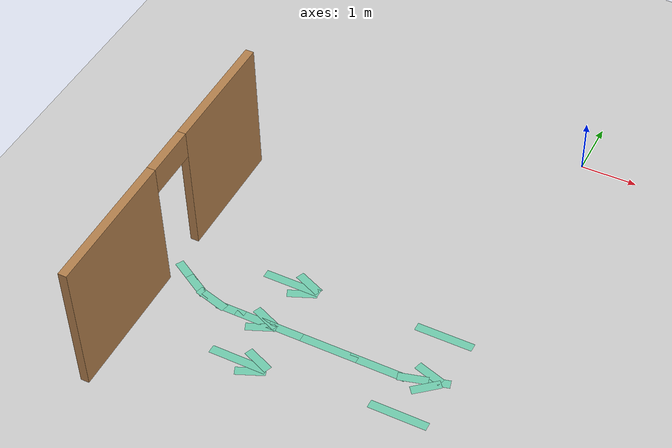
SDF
<sdf version="1.6">
 <world name="default">
  <model name="ground_plane">
   <static>1</static>
   <link name="link">
    <collision name="collision">
     <geometry><plane><normal>0 0 1</normal><size>100 100</size></plane></geometry>
     <surface><friction><ode><mu>100</mu><mu2>50</mu2></ode></friction></surface>
    </collision>
    <visual name="visual">
     <cast_shadows>0</cast_shadows>
     <geometry><plane><normal>0 0 1</normal><size>100 100</size></plane></geometry>
     <material>
      <script><uri>file://media/materials/scripts/gazebo.material</uri><name>Gazebo/Grey</name></script>
     </material>
    </visual>
   </link>
  </model>
  <model name="Untitled">
   <pose>-5.19546 -5.10399 0 0 -0 0</pose>
   <link name="Wall_3">
    <pose>0 -0 0 0 -0 -1.5708</pose>
    <visual name="Wall_3_Visual_0">
     <pose>-1.66418 0 1.25 0 -0 0</pose>
     <geometry><box><size>2.17164 0.15 2.5</size></box></geometry>
     <material>
      <script><uri>file://media/materials/scripts/gazebo.material</uri><name>Gazebo/Wood</name></script>
      <ambient>1 1 1 1</ambient>
     </material>
     <meta><layer>0</layer></meta>
    </visual>
    <collision name="Wall_3_Collision_0">
     <geometry><box><size>2.17164 0.15 2.5</size></box></geometry>
     <pose>-1.66418 0 1.25 0 -0 0</pose>
    </collision>
    <visual name="Wall_3_Visual_1">
     <pose>1.53582 0 1.25 0 -0 0</pose>
     <geometry><box><size>2.42836 0.15 2.5</size></box></geometry>
     <material>
      <script><uri>file://media/materials/scripts/gazebo.material</uri><name>Gazebo/Wood</name></script>
      <ambient>1 1 1 1</ambient>
     </material>
     <meta><layer>0</layer></meta>
    </visual>
    <collision name="Wall_3_Collision_1">
     <geometry><box><size>2.42836 0.15 2.5</size></box></geometry>
     <pose>1.53582 0 1.25 0 -0 0</pose>
    </collision>
    <visual name="Wall_3_Visual_2">
     <pose>-0.128356 0 2.25 0 -0 0</pose>
     <geometry><box><size>0.9 0.15 0.5</size></box></geometry>
     <material>
      <script><uri>file://media/materials/scripts/gazebo.material</uri><name>Gazebo/Wood</name></script>
      <ambient>1 1 1 1</ambient>
     </material>
     <meta><layer>0</layer></meta>
    </visual>
    <collision name="Wall_3_Collision_2">
     <geometry><box><size>0.9 0.15 0.5</size></box></geometry>
     <pose>-0.128356 0 2.25 0 -0 0</pose>
    </collision>
   </link>
   <static>1</static>
  </model>
  <model name="path_test">
   <link name="Wall_27">
    <pose>-2.1139 -0.414832 0 0 0 -0.523599</pose>
    <visual name="Wall_27_Visual">
     <geometry><box><size>0.5 0.15 0</size></box></geometry>
     <material>
      <script><uri>file://media/materials/scripts/gazebo.material</uri><name>Gazebo/Grey</name></script>
      <ambient>0.435294 0.796078 0.67451 1</ambient>
      <shader type="pixel"/>
     </material>
     <meta><layer>0</layer></meta>
    </visual>
    <collision name="Wall_27_Collision">
     <geometry><box><size>0.5 0.15 0</size></box></geometry>
     <surface>
      <friction>
       <ode><mu>1</mu><mu2>1</mu2><fdir1>0 0 0</fdir1><slip1>0</slip1><slip2>0</slip2></ode>
       <torsional>
        <coefficient>1</coefficient>
        <patch_radius>0</patch_radius>
        <surface_radius>0</surface_radius>
        <use_patch_radius>1</use_patch_radius>
        <ode><slip>0</slip></ode>
       </torsional>
      </friction>
      <bounce><restitution_coefficient>0</restitution_coefficient><threshold>1e+06</threshold></bounce>
      <contact>
       <collide_without_contact>0</collide_without_contact>
       <collide_without_contact_bitmask>1</collide_without_contact_bitmask>
       <collide_bitmask>1</collide_bitmask>
       <ode>
        <soft_cfm>0</soft_cfm>
        <soft_erp>0.2</soft_erp>
        <kp>1e+13</kp>
        <kd>1</kd>
        <max_vel>0.01</max_vel>
        <min_depth>0</min_depth>
       </ode>
       <bullet>
        <split_impulse>1</split_impulse>
        <split_impulse_penetration_threshold>-0.01</split_impulse_penetration_threshold>
        <soft_cfm>0</soft_cfm>
        <soft_erp>0.2</soft_erp>
        <kp>1e+13</kp>
        <kd>1</kd>
       </bullet>
      </contact>
     </surface>
    </collision>
   </link>
   <link name="Wall_28">
    <pose>-1.81079 -0.589831 0 0 0 -0.523599</pose>
    <visual name="Wall_28_Visual">
     <geometry><box><size>0.5 0.15 0</size></box></geometry>
     <material>
      <script><uri>file://media/materials/scripts/gazebo.material</uri><name>Gazebo/Grey</name></script>
      <ambient>0.435294 0.796078 0.67451 1</ambient>
      <shader type="pixel"/>
     </material>
     <meta><layer>0</layer></meta>
    </visual>
    <collision name="Wall_28_Collision">
     <geometry><box><size>0.5 0.15 0</size></box></geometry>
     <surface>
      <friction>
       <ode><mu>1</mu><mu2>1</mu2><fdir1>0 0 0</fdir1><slip1>0</slip1><slip2>0</slip2></ode>
       <torsional>
        <coefficient>1</coefficient>
        <patch_radius>0</patch_radius>
        <surface_radius>0</surface_radius>
        <use_patch_radius>1</use_patch_radius>
        <ode><slip>0</slip></ode>
       </torsional>
      </friction>
      <bounce><restitution_coefficient>0</restitution_coefficient><threshold>1e+06</threshold></bounce>
      <contact>
       <collide_without_contact>0</collide_without_contact>
       <collide_without_contact_bitmask>1</collide_without_contact_bitmask>
       <collide_bitmask>1</collide_bitmask>
       <ode>
        <soft_cfm>0</soft_cfm>
        <soft_erp>0.2</soft_erp>
        <kp>1e+13</kp>
        <kd>1</kd>
        <max_vel>0.01</max_vel>
        <min_depth>0</min_depth>
       </ode>
       <bullet>
        <split_impulse>1</split_impulse>
        <split_impulse_penetration_threshold>-0.01</split_impulse_penetration_threshold>
        <soft_cfm>0</soft_cfm>
        <soft_erp>0.2</soft_erp>
        <kp>1e+13</kp>
        <kd>1</kd>
       </bullet>
      </contact>
     </surface>
    </collision>
   </link>
   <link name="Wall_29">
    <pose>-1.61094 -0.690272 0 0 0 -0.261799</pose>
    <visual name="Wall_29_Visual">
     <geometry><box><size>0.25 0.15 0</size></box></geometry>
     <material>
      <script><uri>file://media/materials/scripts/gazebo.material</uri><name>Gazebo/Grey</name></script>
      <ambient>0.435294 0.796078 0.67451 1</ambient>
      <shader type="pixel"/>
     </material>
     <meta><layer>0</layer></meta>
    </visual>
    <collision name="Wall_29_Collision">
     <geometry><box><size>0.25 0.15 0</size></box></geometry>
     <surface>
      <friction>
       <ode><mu>1</mu><mu2>1</mu2><fdir1>0 0 0</fdir1><slip1>0</slip1><slip2>0</slip2></ode>
       <torsional>
        <coefficient>1</coefficient>
        <patch_radius>0</patch_radius>
        <surface_radius>0</surface_radius>
        <use_patch_radius>1</use_patch_radius>
        <ode><slip>0</slip></ode>
       </torsional>
      </friction>
      <bounce><restitution_coefficient>0</restitution_coefficient><threshold>1e+06</threshold></bounce>
      <contact>
       <collide_without_contact>0</collide_without_contact>
       <collide_without_contact_bitmask>1</collide_without_contact_bitmask>
       <collide_bitmask>1</collide_bitmask>
       <ode>
        <soft_cfm>0</soft_cfm>
        <soft_erp>0.2</soft_erp>
        <kp>1e+13</kp>
        <kd>1</kd>
        <max_vel>0.01</max_vel>
        <min_depth>0</min_depth>
       </ode>
       <bullet>
        <split_impulse>1</split_impulse>
        <split_impulse_penetration_threshold>-0.01</split_impulse_penetration_threshold>
        <soft_cfm>0</soft_cfm>
        <soft_erp>0.2</soft_erp>
        <kp>1e+13</kp>
        <kd>1</kd>
       </bullet>
      </contact>
     </surface>
    </collision>
   </link>
   <link name="Wall_30">
    <pose>-1.39361 -0.748507 0 0 0 -0.261799</pose>
    <visual name="Wall_30_Visual">
     <geometry><box><size>0.5 0.15 0</size></box></geometry>
     <material>
      <script><uri>file://media/materials/scripts/gazebo.material</uri><name>Gazebo/Grey</name></script>
      <ambient>0.435294 0.796078 0.67451 1</ambient>
      <shader type="pixel"/>
     </material>
     <meta><layer>0</layer></meta>
    </visual>
    <collision name="Wall_30_Collision">
     <geometry><box><size>0.5 0.15 0</size></box></geometry>
     <surface>
      <friction>
       <ode><mu>1</mu><mu2>1</mu2><fdir1>0 0 0</fdir1><slip1>0</slip1><slip2>0</slip2></ode>
       <torsional>
        <coefficient>1</coefficient>
        <patch_radius>0</patch_radius>
        <surface_radius>0</surface_radius>
        <use_patch_radius>1</use_patch_radius>
        <ode><slip>0</slip></ode>
       </torsional>
      </friction>
      <bounce><restitution_coefficient>0</restitution_coefficient><threshold>1e+06</threshold></bounce>
      <contact>
       <collide_without_contact>0</collide_without_contact>
       <collide_without_contact_bitmask>1</collide_without_contact_bitmask>
       <collide_bitmask>1</collide_bitmask>
       <ode>
        <soft_cfm>0</soft_cfm>
        <soft_erp>0.2</soft_erp>
        <kp>1e+13</kp>
        <kd>1</kd>
        <max_vel>0.01</max_vel>
        <min_depth>0</min_depth>
       </ode>
       <bullet>
        <split_impulse>1</split_impulse>
        <split_impulse_penetration_threshold>-0.01</split_impulse_penetration_threshold>
        <soft_cfm>0</soft_cfm>
        <soft_erp>0.2</soft_erp>
        <kp>1e+13</kp>
        <kd>1</kd>
       </bullet>
      </contact>
     </surface>
    </collision>
   </link>
   <link name="Wall_30_clone_clone_0_clone_clone_0_clone">
    <pose>-0.171138 0.256709 0 0 0 -0.4</pose>
    <inertial>
     <mass>1</mass>
     <inertia><ixx>1</ixx><ixy>0</ixy><ixz>0</ixz><iyy>1</iyy><iyz>0</iyz><izz>1</izz></inertia>
    </inertial>
    <visual name="Wall_30_Visual">
     <geometry><box><size>0.5 0.15 0</size></box></geometry>
     <material>
      <script><uri>file://media/materials/scripts/gazebo.material</uri><name>Gazebo/Grey</name></script>
      <ambient>0.435 0.796 0.675 1</ambient>
      <shader type="pixel"><normal_map>__default__</normal_map></shader>
      <diffuse>0.7 0.7 0.7 1</diffuse>
      <specular>0.01 0.01 0.01 1</specular>
      <emissive>0 0 0 1</emissive>
     </material>
     <meta><layer>0</layer></meta>
    </visual>
    <collision name="Wall_30_Collision">
     <geometry><box><size>0.5 0.15 0</size></box></geometry>
     <surface>
      <friction>
       <ode><mu>1</mu><mu2>1</mu2><fdir1>0 0 0</fdir1><slip1>0</slip1><slip2>0</slip2></ode>
       <torsional>
        <coefficient>1</coefficient>
        <patch_radius>0</patch_radius>
        <surface_radius>0</surface_radius>
        <use_patch_radius>1</use_patch_radius>
        <ode><slip>0</slip></ode>
       </torsional>
      </friction>
      <bounce><restitution_coefficient>0</restitution_coefficient><threshold>1e+06</threshold></bounce>
      <contact>
       <collide_without_contact>0</collide_without_contact>
       <collide_without_contact_bitmask>1</collide_without_contact_bitmask>
       <collide_bitmask>1</collide_bitmask>
       <ode>
        <soft_cfm>0</soft_cfm>
        <soft_erp>0.2</soft_erp>
        <kp>1e+13</kp>
        <kd>1</kd>
        <max_vel>0.01</max_vel>
        <min_depth>0</min_depth>
       </ode>
       <bullet>
        <split_impulse>1</split_impulse>
        <split_impulse_penetration_threshold>-0.01</split_impulse_penetration_threshold>
        <soft_cfm>0</soft_cfm>
        <soft_erp>0.2</soft_erp>
        <kp>1e+13</kp>
        <kd>1</kd>
       </bullet>
      </contact>
     </surface>
    </collision>
   </link>
   <link name="Wall_30_clone_clone_0_clone_clone_clone">
    <pose>-0.448488 -0.701137 0 0 0 -0.4</pose>
    <inertial>
     <mass>1</mass>
     <inertia><ixx>1</ixx><ixy>0</ixy><ixz>0</ixz><iyy>1</iyy><iyz>0</iyz><izz>1</izz></inertia>
    </inertial>
    <visual name="Wall_30_Visual">
     <geometry><box><size>0.5 0.15 0</size></box></geometry>
     <material>
      <script><uri>file://media/materials/scripts/gazebo.material</uri><name>Gazebo/Grey</name></script>
      <ambient>0.435 0.796 0.675 1</ambient>
      <shader type="pixel"><normal_map>__default__</normal_map></shader>
      <diffuse>0.7 0.7 0.7 1</diffuse>
      <specular>0.01 0.01 0.01 1</specular>
      <emissive>0 0 0 1</emissive>
     </material>
     <meta><layer>0</layer></meta>
    </visual>
    <collision name="Wall_30_Collision">
     <geometry><box><size>0.5 0.15 0</size></box></geometry>
     <surface>
      <friction>
       <ode><mu>1</mu><mu2>1</mu2><fdir1>0 0 0</fdir1><slip1>0</slip1><slip2>0</slip2></ode>
       <torsional>
        <coefficient>1</coefficient>
        <patch_radius>0</patch_radius>
        <surface_radius>0</surface_radius>
        <use_patch_radius>1</use_patch_radius>
        <ode><slip>0</slip></ode>
       </torsional>
      </friction>
      <bounce><restitution_coefficient>0</restitution_coefficient><threshold>1e+06</threshold></bounce>
      <contact>
       <collide_without_contact>0</collide_without_contact>
       <collide_without_contact_bitmask>1</collide_without_contact_bitmask>
       <collide_bitmask>1</collide_bitmask>
       <ode>
        <soft_cfm>0</soft_cfm>
        <soft_erp>0.2</soft_erp>
        <kp>1e+13</kp>
        <kd>1</kd>
        <max_vel>0.01</max_vel>
        <min_depth>0</min_depth>
       </ode>
       <bullet>
        <split_impulse>1</split_impulse>
        <split_impulse_penetration_threshold>-0.01</split_impulse_penetration_threshold>
        <soft_cfm>0</soft_cfm>
        <soft_erp>0.2</soft_erp>
        <kp>1e+13</kp>
        <kd>1</kd>
       </bullet>
      </contact>
     </surface>
    </collision>
   </link>
   <link name="Wall_30_clone_clone_0_clone_clone_clone_0">
    <pose>-0.144179 -1.50856 0 0 0 -0.4</pose>
    <inertial>
     <mass>1</mass>
     <inertia><ixx>1</ixx><ixy>0</ixy><ixz>0</ixz><iyy>1</iyy><iyz>0</iyz><izz>1</izz></inertia>
    </inertial>
    <visual name="Wall_30_Visual">
     <geometry><box><size>0.5 0.15 0</size></box></geometry>
     <material>
      <script><uri>file://media/materials/scripts/gazebo.material</uri><name>Gazebo/Grey</name></script>
      <ambient>0.435 0.796 0.675 1</ambient>
      <shader type="pixel"><normal_map>__default__</normal_map></shader>
      <diffuse>0.7 0.7 0.7 1</diffuse>
      <specular>0.01 0.01 0.01 1</specular>
      <emissive>0 0 0 1</emissive>
     </material>
     <meta><layer>0</layer></meta>
    </visual>
    <collision name="Wall_30_Collision">
     <geometry><box><size>0.5 0.15 0</size></box></geometry>
     <surface>
      <friction>
       <ode><mu>1</mu><mu2>1</mu2><fdir1>0 0 0</fdir1><slip1>0</slip1><slip2>0</slip2></ode>
       <torsional>
        <coefficient>1</coefficient>
        <patch_radius>0</patch_radius>
        <surface_radius>0</surface_radius>
        <use_patch_radius>1</use_patch_radius>
        <ode><slip>0</slip></ode>
       </torsional>
      </friction>
      <bounce><restitution_coefficient>0</restitution_coefficient><threshold>1e+06</threshold></bounce>
      <contact>
       <collide_without_contact>0</collide_without_contact>
       <collide_without_contact_bitmask>1</collide_without_contact_bitmask>
       <collide_bitmask>1</collide_bitmask>
       <ode>
        <soft_cfm>0</soft_cfm>
        <soft_erp>0.2</soft_erp>
        <kp>1e+13</kp>
        <kd>1</kd>
        <max_vel>0.01</max_vel>
        <min_depth>0</min_depth>
       </ode>
       <bullet>
        <split_impulse>1</split_impulse>
        <split_impulse_penetration_threshold>-0.01</split_impulse_penetration_threshold>
        <soft_cfm>0</soft_cfm>
        <soft_erp>0.2</soft_erp>
        <kp>1e+13</kp>
        <kd>1</kd>
       </bullet>
      </contact>
     </surface>
    </collision>
   </link>
   <link name="Wall_30_clone_clone_clone_clone_0">
    <pose>-0.176148 0.013575 0 0 -0 0.4</pose>
    <inertial>
     <mass>1</mass>
     <inertia><ixx>1</ixx><ixy>0</ixy><ixz>0</ixz><iyy>1</iyy><iyz>0</iyz><izz>1</izz></inertia>
    </inertial>
    <visual name="Wall_30_Visual">
     <geometry><box><size>0.5 0.15 0</size></box></geometry>
     <material>
      <script><uri>file://media/materials/scripts/gazebo.material</uri><name>Gazebo/Grey</name></script>
      <ambient>0.435 0.796 0.675 1</ambient>
      <shader type="pixel"><normal_map>__default__</normal_map></shader>
      <diffuse>0.7 0.7 0.7 1</diffuse>
      <specular>0.01 0.01 0.01 1</specular>
      <emissive>0 0 0 1</emissive>
     </material>
     <meta><layer>0</layer></meta>
    </visual>
    <collision name="Wall_30_Collision">
     <geometry><box><size>0.5 0.15 0</size></box></geometry>
     <surface>
      <friction>
       <ode><mu>1</mu><mu2>1</mu2><fdir1>0 0 0</fdir1><slip1>0</slip1><slip2>0</slip2></ode>
       <torsional>
        <coefficient>1</coefficient>
        <patch_radius>0</patch_radius>
        <surface_radius>0</surface_radius>
        <use_patch_radius>1</use_patch_radius>
        <ode><slip>0</slip></ode>
       </torsional>
      </friction>
      <bounce><restitution_coefficient>0</restitution_coefficient><threshold>1e+06</threshold></bounce>
      <contact>
       <collide_without_contact>0</collide_without_contact>
       <collide_without_contact_bitmask>1</collide_without_contact_bitmask>
       <collide_bitmask>1</collide_bitmask>
       <ode>
        <soft_cfm>0</soft_cfm>
        <soft_erp>0.2</soft_erp>
        <kp>1e+13</kp>
        <kd>1</kd>
        <max_vel>0.01</max_vel>
        <min_depth>0</min_depth>
       </ode>
       <bullet>
        <split_impulse>1</split_impulse>
        <split_impulse_penetration_threshold>-0.01</split_impulse_penetration_threshold>
        <soft_cfm>0</soft_cfm>
        <soft_erp>0.2</soft_erp>
        <kp>1e+13</kp>
        <kd>1</kd>
       </bullet>
      </contact>
     </surface>
    </collision>
   </link>
   <link name="Wall_30_clone_clone_clone_clone_clone">
    <pose>-0.441074 -0.901347 0 0 -0 0.4</pose>
    <inertial>
     <mass>1</mass>
     <inertia><ixx>1</ixx><ixy>0</ixy><ixz>0</ixz><iyy>1</iyy><iyz>0</iyz><izz>1</izz></inertia>
    </inertial>
    <visual name="Wall_30_Visual">
     <geometry><box><size>0.5 0.15 0</size></box></geometry>
     <material>
      <script><uri>file://media/materials/scripts/gazebo.material</uri><name>Gazebo/Grey</name></script>
      <ambient>0.435 0.796 0.675 1</ambient>
      <shader type="pixel"><normal_map>__default__</normal_map></shader>
      <diffuse>0.7 0.7 0.7 1</diffuse>
      <specular>0.01 0.01 0.01 1</specular>
      <emissive>0 0 0 1</emissive>
     </material>
     <meta><layer>0</layer></meta>
    </visual>
    <collision name="Wall_30_Collision">
     <geometry><box><size>0.5 0.15 0</size></box></geometry>
     <surface>
      <friction>
       <ode><mu>1</mu><mu2>1</mu2><fdir1>0 0 0</fdir1><slip1>0</slip1><slip2>0</slip2></ode>
       <torsional>
        <coefficient>1</coefficient>
        <patch_radius>0</patch_radius>
        <surface_radius>0</surface_radius>
        <use_patch_radius>1</use_patch_radius>
        <ode><slip>0</slip></ode>
       </torsional>
      </friction>
      <bounce><restitution_coefficient>0</restitution_coefficient><threshold>1e+06</threshold></bounce>
      <contact>
       <collide_without_contact>0</collide_without_contact>
       <collide_without_contact_bitmask>1</collide_without_contact_bitmask>
       <collide_bitmask>1</collide_bitmask>
       <ode>
        <soft_cfm>0</soft_cfm>
        <soft_erp>0.2</soft_erp>
        <kp>1e+13</kp>
        <kd>1</kd>
        <max_vel>0.01</max_vel>
        <min_depth>0</min_depth>
       </ode>
       <bullet>
        <split_impulse>1</split_impulse>
        <split_impulse_penetration_threshold>-0.01</split_impulse_penetration_threshold>
        <soft_cfm>0</soft_cfm>
        <soft_erp>0.2</soft_erp>
        <kp>1e+13</kp>
        <kd>1</kd>
       </bullet>
      </contact>
     </surface>
    </collision>
   </link>
   <link name="Wall_30_clone_clone_clone_clone_clone_0">
    <pose>-0.149606 -1.75362 0 0 -0 0.4</pose>
    <inertial>
     <mass>1</mass>
     <inertia><ixx>1</ixx><ixy>0</ixy><ixz>0</ixz><iyy>1</iyy><iyz>0</iyz><izz>1</izz></inertia>
    </inertial>
    <visual name="Wall_30_Visual">
     <geometry><box><size>0.5 0.15 0</size></box></geometry>
     <material>
      <script><uri>file://media/materials/scripts/gazebo.material</uri><name>Gazebo/Grey</name></script>
      <ambient>0.435 0.796 0.675 1</ambient>
      <shader type="pixel"><normal_map>__default__</normal_map></shader>
      <diffuse>0.7 0.7 0.7 1</diffuse>
      <specular>0.01 0.01 0.01 1</specular>
      <emissive>0 0 0 1</emissive>
     </material>
     <meta><layer>0</layer></meta>
    </visual>
    <collision name="Wall_30_Collision">
     <geometry><box><size>0.5 0.15 0</size></box></geometry>
     <surface>
      <friction>
       <ode><mu>1</mu><mu2>1</mu2><fdir1>0 0 0</fdir1><slip1>0</slip1><slip2>0</slip2></ode>
       <torsional>
        <coefficient>1</coefficient>
        <patch_radius>0</patch_radius>
        <surface_radius>0</surface_radius>
        <use_patch_radius>1</use_patch_radius>
        <ode><slip>0</slip></ode>
       </torsional>
      </friction>
      <bounce><restitution_coefficient>0</restitution_coefficient><threshold>1e+06</threshold></bounce>
      <contact>
       <collide_without_contact>0</collide_without_contact>
       <collide_without_contact_bitmask>1</collide_without_contact_bitmask>
       <collide_bitmask>1</collide_bitmask>
       <ode>
        <soft_cfm>0</soft_cfm>
        <soft_erp>0.2</soft_erp>
        <kp>1e+13</kp>
        <kd>1</kd>
        <max_vel>0.01</max_vel>
        <min_depth>0</min_depth>
       </ode>
       <bullet>
        <split_impulse>1</split_impulse>
        <split_impulse_penetration_threshold>-0.01</split_impulse_penetration_threshold>
        <soft_cfm>0</soft_cfm>
        <soft_erp>0.2</soft_erp>
        <kp>1e+13</kp>
        <kd>1</kd>
       </bullet>
      </contact>
     </surface>
    </collision>
   </link>
   <link name="Wall_30_clone_clone_clone_clone_clone_clone_clone">
    <pose>2.45221 -0.812896 0 0 -0 0.7</pose>
    <inertial>
     <mass>1</mass>
     <inertia><ixx>1</ixx><ixy>0</ixy><ixz>0</ixz><iyy>1</iyy><iyz>0</iyz><izz>1</izz></inertia>
    </inertial>
    <visual name="Wall_30_Visual">
     <geometry><box><size>0.5 0.15 0</size></box></geometry>
     <material>
      <script><uri>file://media/materials/scripts/gazebo.material</uri><name>Gazebo/Grey</name></script>
      <ambient>0.435 0.796 0.675 1</ambient>
      <shader type="pixel"><normal_map>__default__</normal_map></shader>
      <diffuse>0.7 0.7 0.7 1</diffuse>
      <specular>0.01 0.01 0.01 1</specular>
      <emissive>0 0 0 1</emissive>
     </material>
     <meta><layer>0</layer></meta>
    </visual>
    <collision name="Wall_30_Collision">
     <geometry><box><size>0.5 0.15 0</size></box></geometry>
     <surface>
      <friction>
       <ode><mu>1</mu><mu2>1</mu2><fdir1>0 0 0</fdir1><slip1>0</slip1><slip2>0</slip2></ode>
       <torsional>
        <coefficient>1</coefficient>
        <patch_radius>0</patch_radius>
        <surface_radius>0</surface_radius>
        <use_patch_radius>1</use_patch_radius>
        <ode><slip>0</slip></ode>
       </torsional>
      </friction>
      <bounce><restitution_coefficient>0</restitution_coefficient><threshold>1e+06</threshold></bounce>
      <contact>
       <collide_without_contact>0</collide_without_contact>
       <collide_without_contact_bitmask>1</collide_without_contact_bitmask>
       <collide_bitmask>1</collide_bitmask>
       <ode>
        <soft_cfm>0</soft_cfm>
        <soft_erp>0.2</soft_erp>
        <kp>1e+13</kp>
        <kd>1</kd>
        <max_vel>0.01</max_vel>
        <min_depth>0</min_depth>
       </ode>
       <bullet>
        <split_impulse>1</split_impulse>
        <split_impulse_penetration_threshold>-0.01</split_impulse_penetration_threshold>
        <soft_cfm>0</soft_cfm>
        <soft_erp>0.2</soft_erp>
        <kp>1e+13</kp>
        <kd>1</kd>
       </bullet>
      </contact>
     </surface>
    </collision>
   </link>
   <link name="Wall_30_clone_clone_clone_clone_clone_clone_clone_0">
    <pose>2.38992 -0.552326 0 0 0 -0.3</pose>
    <inertial>
     <mass>1</mass>
     <inertia><ixx>1</ixx><ixy>0</ixy><ixz>0</ixz><iyy>1</iyy><iyz>0</iyz><izz>1</izz></inertia>
    </inertial>
    <visual name="Wall_30_Visual">
     <geometry><box><size>0.5 0.15 0</size></box></geometry>
     <material>
      <script><uri>file://media/materials/scripts/gazebo.material</uri><name>Gazebo/Grey</name></script>
      <ambient>0.435 0.796 0.675 1</ambient>
      <shader type="pixel"><normal_map>__default__</normal_map></shader>
      <diffuse>0.7 0.7 0.7 1</diffuse>
      <specular>0.01 0.01 0.01 1</specular>
      <emissive>0 0 0 1</emissive>
     </material>
     <meta><layer>0</layer></meta>
    </visual>
    <collision name="Wall_30_Collision">
     <geometry><box><size>0.5 0.15 0</size></box></geometry>
     <surface>
      <friction>
       <ode><mu>1</mu><mu2>1</mu2><fdir1>0 0 0</fdir1><slip1>0</slip1><slip2>0</slip2></ode>
       <torsional>
        <coefficient>1</coefficient>
        <patch_radius>0</patch_radius>
        <surface_radius>0</surface_radius>
        <use_patch_radius>1</use_patch_radius>
        <ode><slip>0</slip></ode>
       </torsional>
      </friction>
      <bounce><restitution_coefficient>0</restitution_coefficient><threshold>1e+06</threshold></bounce>
      <contact>
       <collide_without_contact>0</collide_without_contact>
       <collide_without_contact_bitmask>1</collide_without_contact_bitmask>
       <collide_bitmask>1</collide_bitmask>
       <ode>
        <soft_cfm>0</soft_cfm>
        <soft_erp>0.2</soft_erp>
        <kp>1e+13</kp>
        <kd>1</kd>
        <max_vel>0.01</max_vel>
        <min_depth>0</min_depth>
       </ode>
       <bullet>
        <split_impulse>1</split_impulse>
        <split_impulse_penetration_threshold>-0.01</split_impulse_penetration_threshold>
        <soft_cfm>0</soft_cfm>
        <soft_erp>0.2</soft_erp>
        <kp>1e+13</kp>
        <kd>1</kd>
       </bullet>
      </contact>
     </surface>
    </collision>
   </link>
   <link name="Wall_31">
    <pose>-1.04957 -0.7938 0 0 -0 0</pose>
    <visual name="Wall_31_Visual">
     <geometry><box><size>0.5 0.15 0</size></box></geometry>
     <material>
      <script><uri>file://media/materials/scripts/gazebo.material</uri><name>Gazebo/Grey</name></script>
      <ambient>0.435294 0.796078 0.67451 1</ambient>
      <shader type="pixel"/>
     </material>
     <meta><layer>0</layer></meta>
    </visual>
    <collision name="Wall_31_Collision">
     <geometry><box><size>0.5 0.15 0</size></box></geometry>
     <surface>
      <friction>
       <ode><mu>1</mu><mu2>1</mu2><fdir1>0 0 0</fdir1><slip1>0</slip1><slip2>0</slip2></ode>
       <torsional>
        <coefficient>1</coefficient>
        <patch_radius>0</patch_radius>
        <surface_radius>0</surface_radius>
        <use_patch_radius>1</use_patch_radius>
        <ode><slip>0</slip></ode>
       </torsional>
      </friction>
      <bounce><restitution_coefficient>0</restitution_coefficient><threshold>1e+06</threshold></bounce>
      <contact>
       <collide_without_contact>0</collide_without_contact>
       <collide_without_contact_bitmask>1</collide_without_contact_bitmask>
       <collide_bitmask>1</collide_bitmask>
       <ode>
        <soft_cfm>0</soft_cfm>
        <soft_erp>0.2</soft_erp>
        <kp>1e+13</kp>
        <kd>1</kd>
        <max_vel>0.01</max_vel>
        <min_depth>0</min_depth>
       </ode>
       <bullet>
        <split_impulse>1</split_impulse>
        <split_impulse_penetration_threshold>-0.01</split_impulse_penetration_threshold>
        <soft_cfm>0</soft_cfm>
        <soft_erp>0.2</soft_erp>
        <kp>1e+13</kp>
        <kd>1</kd>
       </bullet>
      </contact>
     </surface>
    </collision>
   </link>
   <link name="Wall_32">
    <pose>-0.574569 -0.7938 0 0 -0 0</pose>
    <visual name="Wall_32_Visual">
     <geometry><box><size>0.75 0.15 0</size></box></geometry>
     <material>
      <script><uri>file://media/materials/scripts/gazebo.material</uri><name>Gazebo/Grey</name></script>
      <ambient>0.435294 0.796078 0.67451 1</ambient>
      <shader type="pixel"/>
     </material>
     <meta><layer>0</layer></meta>
    </visual>
    <collision name="Wall_32_Collision">
     <geometry><box><size>0.75 0.15 0</size></box></geometry>
     <surface>
      <friction>
       <ode><mu>1</mu><mu2>1</mu2><fdir1>0 0 0</fdir1><slip1>0</slip1><slip2>0</slip2></ode>
       <torsional>
        <coefficient>1</coefficient>
        <patch_radius>0</patch_radius>
        <surface_radius>0</surface_radius>
        <use_patch_radius>1</use_patch_radius>
        <ode><slip>0</slip></ode>
       </torsional>
      </friction>
      <bounce><restitution_coefficient>0</restitution_coefficient><threshold>1e+06</threshold></bounce>
      <contact>
       <collide_without_contact>0</collide_without_contact>
       <collide_without_contact_bitmask>1</collide_without_contact_bitmask>
       <collide_bitmask>1</collide_bitmask>
       <ode>
        <soft_cfm>0</soft_cfm>
        <soft_erp>0.2</soft_erp>
        <kp>1e+13</kp>
        <kd>1</kd>
        <max_vel>0.01</max_vel>
        <min_depth>0</min_depth>
       </ode>
       <bullet>
        <split_impulse>1</split_impulse>
        <split_impulse_penetration_threshold>-0.01</split_impulse_penetration_threshold>
        <soft_cfm>0</soft_cfm>
        <soft_erp>0.2</soft_erp>
        <kp>1e+13</kp>
        <kd>1</kd>
       </bullet>
      </contact>
     </surface>
    </collision>
   </link>
   <link name="Wall_33">
    <pose>0.025431 -0.7938 0 0 -0 0</pose>
    <visual name="Wall_33_Visual">
     <geometry><box><size>0.75 0.15 0</size></box></geometry>
     <material>
      <script><uri>file://media/materials/scripts/gazebo.material</uri><name>Gazebo/Grey</name></script>
      <ambient>0.435294 0.796078 0.67451 1</ambient>
      <shader type="pixel"/>
     </material>
     <meta><layer>0</layer></meta>
    </visual>
    <collision name="Wall_33_Collision">
     <geometry><box><size>0.75 0.15 0</size></box></geometry>
     <surface>
      <friction>
       <ode><mu>1</mu><mu2>1</mu2><fdir1>0 0 0</fdir1><slip1>0</slip1><slip2>0</slip2></ode>
       <torsional>
        <coefficient>1</coefficient>
        <patch_radius>0</patch_radius>
        <surface_radius>0</surface_radius>
        <use_patch_radius>1</use_patch_radius>
        <ode><slip>0</slip></ode>
       </torsional>
      </friction>
      <bounce><restitution_coefficient>0</restitution_coefficient><threshold>1e+06</threshold></bounce>
      <contact>
       <collide_without_contact>0</collide_without_contact>
       <collide_without_contact_bitmask>1</collide_without_contact_bitmask>
       <collide_bitmask>1</collide_bitmask>
       <ode>
        <soft_cfm>0</soft_cfm>
        <soft_erp>0.2</soft_erp>
        <kp>1e+13</kp>
        <kd>1</kd>
        <max_vel>0.01</max_vel>
        <min_depth>0</min_depth>
       </ode>
       <bullet>
        <split_impulse>1</split_impulse>
        <split_impulse_penetration_threshold>-0.01</split_impulse_penetration_threshold>
        <soft_cfm>0</soft_cfm>
        <soft_erp>0.2</soft_erp>
        <kp>1e+13</kp>
        <kd>1</kd>
       </bullet>
      </contact>
     </surface>
    </collision>
   </link>
   <link name="Wall_34">
    <pose>0.750431 -0.7938 0 0 -0 0</pose>
    <visual name="Wall_34_Visual">
     <geometry><box><size>1 0.15 0</size></box></geometry>
     <material>
      <script><uri>file://media/materials/scripts/gazebo.material</uri><name>Gazebo/Grey</name></script>
      <ambient>0.435294 0.796078 0.67451 1</ambient>
      <shader type="pixel"/>
     </material>
     <meta><layer>0</layer></meta>
    </visual>
    <collision name="Wall_34_Collision">
     <geometry><box><size>1 0.15 0</size></box></geometry>
     <surface>
      <friction>
       <ode><mu>1</mu><mu2>1</mu2><fdir1>0 0 0</fdir1><slip1>0</slip1><slip2>0</slip2></ode>
       <torsional>
        <coefficient>1</coefficient>
        <patch_radius>0</patch_radius>
        <surface_radius>0</surface_radius>
        <use_patch_radius>1</use_patch_radius>
        <ode><slip>0</slip></ode>
       </torsional>
      </friction>
      <bounce><restitution_coefficient>0</restitution_coefficient><threshold>1e+06</threshold></bounce>
      <contact>
       <collide_without_contact>0</collide_without_contact>
       <collide_without_contact_bitmask>1</collide_without_contact_bitmask>
       <collide_bitmask>1</collide_bitmask>
       <ode>
        <soft_cfm>0</soft_cfm>
        <soft_erp>0.2</soft_erp>
        <kp>1e+13</kp>
        <kd>1</kd>
        <max_vel>0.01</max_vel>
        <min_depth>0</min_depth>
       </ode>
       <bullet>
        <split_impulse>1</split_impulse>
        <split_impulse_penetration_threshold>-0.01</split_impulse_penetration_threshold>
        <soft_cfm>0</soft_cfm>
        <soft_erp>0.2</soft_erp>
        <kp>1e+13</kp>
        <kd>1</kd>
       </bullet>
      </contact>
     </surface>
    </collision>
   </link>
   <link name="Wall_34_clone_clone_0_clone">
    <pose>-0.427347 0.139962 0 0 -0 0</pose>
    <visual name="Wall_34_Visual">
     <geometry><box><size>1 0.15 0</size></box></geometry>
     <material>
      <script><uri>file://media/materials/scripts/gazebo.material</uri><name>Gazebo/Grey</name></script>
      <ambient>0.435294 0.796078 0.67451 1</ambient>
      <shader type="pixel"/>
     </material>
     <meta><layer>0</layer></meta>
    </visual>
    <collision name="Wall_34_Collision">
     <geometry><box><size>1 0.15 0</size></box></geometry>
     <surface>
      <friction>
       <ode><mu>1</mu><mu2>1</mu2><fdir1>0 0 0</fdir1><slip1>0</slip1><slip2>0</slip2></ode>
       <torsional>
        <coefficient>1</coefficient>
        <patch_radius>0</patch_radius>
        <surface_radius>0</surface_radius>
        <use_patch_radius>1</use_patch_radius>
        <ode><slip>0</slip></ode>
       </torsional>
      </friction>
      <bounce><restitution_coefficient>0</restitution_coefficient><threshold>1e+06</threshold></bounce>
      <contact>
       <collide_without_contact>0</collide_without_contact>
       <collide_without_contact_bitmask>1</collide_without_contact_bitmask>
       <collide_bitmask>1</collide_bitmask>
       <ode>
        <soft_cfm>0</soft_cfm>
        <soft_erp>0.2</soft_erp>
        <kp>1e+13</kp>
        <kd>1</kd>
        <max_vel>0.01</max_vel>
        <min_depth>0</min_depth>
       </ode>
       <bullet>
        <split_impulse>1</split_impulse>
        <split_impulse_penetration_threshold>-0.01</split_impulse_penetration_threshold>
        <soft_cfm>0</soft_cfm>
        <soft_erp>0.2</soft_erp>
        <kp>1e+13</kp>
        <kd>1</kd>
       </bullet>
      </contact>
     </surface>
    </collision>
   </link>
   <link name="Wall_34_clone_clone_0_clone_clone">
    <pose>2.29032 0.225762 0 0 -0 0</pose>
    <visual name="Wall_34_Visual">
     <geometry><box><size>1 0.15 0</size></box></geometry>
     <material>
      <script><uri>file://media/materials/scripts/gazebo.material</uri><name>Gazebo/Grey</name></script>
      <ambient>0.435294 0.796078 0.67451 1</ambient>
      <shader type="pixel"/>
     </material>
     <meta><layer>0</layer></meta>
    </visual>
    <collision name="Wall_34_Collision">
     <geometry><box><size>1 0.15 0</size></box></geometry>
     <surface>
      <friction>
       <ode><mu>1</mu><mu2>1</mu2><fdir1>0 0 0</fdir1><slip1>0</slip1><slip2>0</slip2></ode>
       <torsional>
        <coefficient>1</coefficient>
        <patch_radius>0</patch_radius>
        <surface_radius>0</surface_radius>
        <use_patch_radius>1</use_patch_radius>
        <ode><slip>0</slip></ode>
       </torsional>
      </friction>
      <bounce><restitution_coefficient>0</restitution_coefficient><threshold>1e+06</threshold></bounce>
      <contact>
       <collide_without_contact>0</collide_without_contact>
       <collide_without_contact_bitmask>1</collide_without_contact_bitmask>
       <collide_bitmask>1</collide_bitmask>
       <ode>
        <soft_cfm>0</soft_cfm>
        <soft_erp>0.2</soft_erp>
        <kp>1e+13</kp>
        <kd>1</kd>
        <max_vel>0.01</max_vel>
        <min_depth>0</min_depth>
       </ode>
       <bullet>
        <split_impulse>1</split_impulse>
        <split_impulse_penetration_threshold>-0.01</split_impulse_penetration_threshold>
        <soft_cfm>0</soft_cfm>
        <soft_erp>0.2</soft_erp>
        <kp>1e+13</kp>
        <kd>1</kd>
       </bullet>
      </contact>
     </surface>
    </collision>
   </link>
   <link name="Wall_34_clone_clone_clone">
    <pose>-0.429336 -1.63421 0 0 -0 0</pose>
    <visual name="Wall_34_Visual">
     <geometry><box><size>1 0.15 0</size></box></geometry>
     <material>
      <script><uri>file://media/materials/scripts/gazebo.material</uri><name>Gazebo/Grey</name></script>
      <ambient>0.435294 0.796078 0.67451 1</ambient>
      <shader type="pixel"/>
     </material>
     <meta><layer>0</layer></meta>
    </visual>
    <collision name="Wall_34_Collision">
     <geometry><box><size>1 0.15 0</size></box></geometry>
     <surface>
      <friction>
       <ode><mu>1</mu><mu2>1</mu2><fdir1>0 0 0</fdir1><slip1>0</slip1><slip2>0</slip2></ode>
       <torsional>
        <coefficient>1</coefficient>
        <patch_radius>0</patch_radius>
        <surface_radius>0</surface_radius>
        <use_patch_radius>1</use_patch_radius>
        <ode><slip>0</slip></ode>
       </torsional>
      </friction>
      <bounce><restitution_coefficient>0</restitution_coefficient><threshold>1e+06</threshold></bounce>
      <contact>
       <collide_without_contact>0</collide_without_contact>
       <collide_without_contact_bitmask>1</collide_without_contact_bitmask>
       <collide_bitmask>1</collide_bitmask>
       <ode>
        <soft_cfm>0</soft_cfm>
        <soft_erp>0.2</soft_erp>
        <kp>1e+13</kp>
        <kd>1</kd>
        <max_vel>0.01</max_vel>
        <min_depth>0</min_depth>
       </ode>
       <bullet>
        <split_impulse>1</split_impulse>
        <split_impulse_penetration_threshold>-0.01</split_impulse_penetration_threshold>
        <soft_cfm>0</soft_cfm>
        <soft_erp>0.2</soft_erp>
        <kp>1e+13</kp>
        <kd>1</kd>
       </bullet>
      </contact>
     </surface>
    </collision>
   </link>
   <link name="Wall_34_clone_clone_clone_clone">
    <pose>2.29981 -1.48217 0 0 -0 0</pose>
    <visual name="Wall_34_Visual">
     <geometry><box><size>1 0.15 0</size></box></geometry>
     <material>
      <script><uri>file://media/materials/scripts/gazebo.material</uri><name>Gazebo/Grey</name></script>
      <ambient>0.435294 0.796078 0.67451 1</ambient>
      <shader type="pixel"/>
     </material>
     <meta><layer>0</layer></meta>
    </visual>
    <collision name="Wall_34_Collision">
     <geometry><box><size>1 0.15 0</size></box></geometry>
     <surface>
      <friction>
       <ode><mu>1</mu><mu2>1</mu2><fdir1>0 0 0</fdir1><slip1>0</slip1><slip2>0</slip2></ode>
       <torsional>
        <coefficient>1</coefficient>
        <patch_radius>0</patch_radius>
        <surface_radius>0</surface_radius>
        <use_patch_radius>1</use_patch_radius>
        <ode><slip>0</slip></ode>
       </torsional>
      </friction>
      <bounce><restitution_coefficient>0</restitution_coefficient><threshold>1e+06</threshold></bounce>
      <contact>
       <collide_without_contact>0</collide_without_contact>
       <collide_without_contact_bitmask>1</collide_without_contact_bitmask>
       <collide_bitmask>1</collide_bitmask>
       <ode>
        <soft_cfm>0</soft_cfm>
        <soft_erp>0.2</soft_erp>
        <kp>1e+13</kp>
        <kd>1</kd>
        <max_vel>0.01</max_vel>
        <min_depth>0</min_depth>
       </ode>
       <bullet>
        <split_impulse>1</split_impulse>
        <split_impulse_penetration_threshold>-0.01</split_impulse_penetration_threshold>
        <soft_cfm>0</soft_cfm>
        <soft_erp>0.2</soft_erp>
        <kp>1e+13</kp>
        <kd>1</kd>
       </bullet>
      </contact>
     </surface>
    </collision>
   </link>
   <link name="Wall_35">
    <pose>1.60043 -0.7938 0 0 -0 0</pose>
    <visual name="Wall_35_Visual">
     <geometry><box><size>1 0.15 0</size></box></geometry>
     <material>
      <script><uri>file://media/materials/scripts/gazebo.material</uri><name>Gazebo/Grey</name></script>
      <ambient>0.435294 0.796078 0.67451 1</ambient>
      <shader type="pixel"/>
     </material>
     <meta><layer>0</layer></meta>
    </visual>
    <collision name="Wall_35_Collision">
     <geometry><box><size>1 0.15 0</size></box></geometry>
     <surface>
      <friction>
       <ode><mu>1</mu><mu2>1</mu2><fdir1>0 0 0</fdir1><slip1>0</slip1><slip2>0</slip2></ode>
       <torsional>
        <coefficient>1</coefficient>
        <patch_radius>0</patch_radius>
        <surface_radius>0</surface_radius>
        <use_patch_radius>1</use_patch_radius>
        <ode><slip>0</slip></ode>
       </torsional>
      </friction>
      <bounce><restitution_coefficient>0</restitution_coefficient><threshold>1e+06</threshold></bounce>
      <contact>
       <collide_without_contact>0</collide_without_contact>
       <collide_without_contact_bitmask>1</collide_without_contact_bitmask>
       <collide_bitmask>1</collide_bitmask>
       <ode>
        <soft_cfm>0</soft_cfm>
        <soft_erp>0.2</soft_erp>
        <kp>1e+13</kp>
        <kd>1</kd>
        <max_vel>0.01</max_vel>
        <min_depth>0</min_depth>
       </ode>
       <bullet>
        <split_impulse>1</split_impulse>
        <split_impulse_penetration_threshold>-0.01</split_impulse_penetration_threshold>
        <soft_cfm>0</soft_cfm>
        <soft_erp>0.2</soft_erp>
        <kp>1e+13</kp>
        <kd>1</kd>
       </bullet>
      </contact>
     </surface>
    </collision>
   </link>
   <link name="Wall_36">
    <pose>2.19447 -0.748507 0 0 -0 0.261799</pose>
    <visual name="Wall_36_Visual">
     <geometry><box><size>0.5 0.15 0</size></box></geometry>
     <material>
      <script><uri>file://media/materials/scripts/gazebo.material</uri><name>Gazebo/Grey</name></script>
      <ambient>0.435294 0.796078 0.67451 1</ambient>
      <shader type="pixel"/>
     </material>
     <meta><layer>0</layer></meta>
    </visual>
    <collision name="Wall_36_Collision">
     <geometry><box><size>0.5 0.15 0</size></box></geometry>
     <surface>
      <friction>
       <ode><mu>1</mu><mu2>1</mu2><fdir1>0 0 0</fdir1><slip1>0</slip1><slip2>0</slip2></ode>
       <torsional>
        <coefficient>1</coefficient>
        <patch_radius>0</patch_radius>
        <surface_radius>0</surface_radius>
        <use_patch_radius>1</use_patch_radius>
        <ode><slip>0</slip></ode>
       </torsional>
      </friction>
      <bounce><restitution_coefficient>0</restitution_coefficient><threshold>1e+06</threshold></bounce>
      <contact>
       <collide_without_contact>0</collide_without_contact>
       <collide_without_contact_bitmask>1</collide_without_contact_bitmask>
       <collide_bitmask>1</collide_bitmask>
       <ode>
        <soft_cfm>0</soft_cfm>
        <soft_erp>0.2</soft_erp>
        <kp>1e+13</kp>
        <kd>1</kd>
        <max_vel>0.01</max_vel>
        <min_depth>0</min_depth>
       </ode>
       <bullet>
        <split_impulse>1</split_impulse>
        <split_impulse_penetration_threshold>-0.01</split_impulse_penetration_threshold>
        <soft_cfm>0</soft_cfm>
        <soft_erp>0.2</soft_erp>
        <kp>1e+13</kp>
        <kd>1</kd>
       </bullet>
      </contact>
     </surface>
    </collision>
   </link>
   <link name="Wall_37">
    <pose>2.53254 -0.65792 0 0 -0 0.261799</pose>
    <visual name="Wall_37_Visual">
     <geometry><box><size>0.5 0.15 0</size></box></geometry>
     <material>
      <script><uri>file://media/materials/scripts/gazebo.material</uri><name>Gazebo/Grey</name></script>
      <ambient>0.435294 0.796078 0.67451 1</ambient>
      <shader type="pixel"/>
     </material>
     <meta><layer>0</layer></meta>
    </visual>
    <collision name="Wall_37_Collision">
     <geometry><box><size>0.5 0.15 0</size></box></geometry>
     <surface>
      <friction>
       <ode><mu>1</mu><mu2>1</mu2><fdir1>0 0 0</fdir1><slip1>0</slip1><slip2>0</slip2></ode>
       <torsional>
        <coefficient>1</coefficient>
        <patch_radius>0</patch_radius>
        <surface_radius>0</surface_radius>
        <use_patch_radius>1</use_patch_radius>
        <ode><slip>0</slip></ode>
       </torsional>
      </friction>
      <bounce><restitution_coefficient>0</restitution_coefficient><threshold>1e+06</threshold></bounce>
      <contact>
       <collide_without_contact>0</collide_without_contact>
       <collide_without_contact_bitmask>1</collide_without_contact_bitmask>
       <collide_bitmask>1</collide_bitmask>
       <ode>
        <soft_cfm>0</soft_cfm>
        <soft_erp>0.2</soft_erp>
        <kp>1e+13</kp>
        <kd>1</kd>
        <max_vel>0.01</max_vel>
        <min_depth>0</min_depth>
       </ode>
       <bullet>
        <split_impulse>1</split_impulse>
        <split_impulse_penetration_threshold>-0.01</split_impulse_penetration_threshold>
        <soft_cfm>0</soft_cfm>
        <soft_erp>0.2</soft_erp>
        <kp>1e+13</kp>
        <kd>1</kd>
       </bullet>
      </contact>
     </surface>
    </collision>
   </link>
   <static>1</static>
   <pose>-2.83262 -4.78981 0.001 0 -0 0</pose>
  </model>
 </world>
</sdf>
